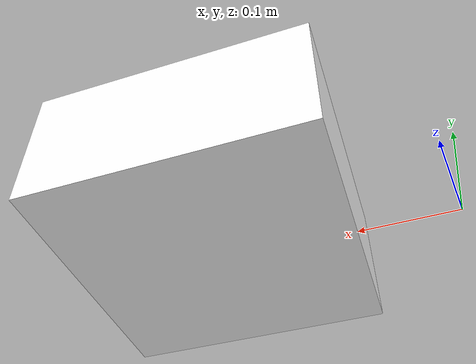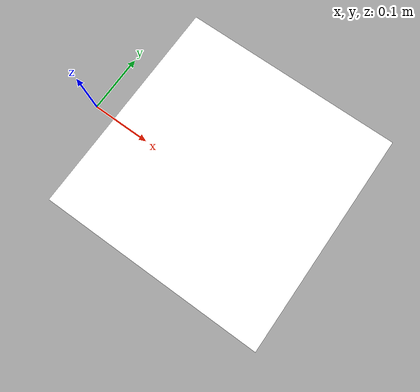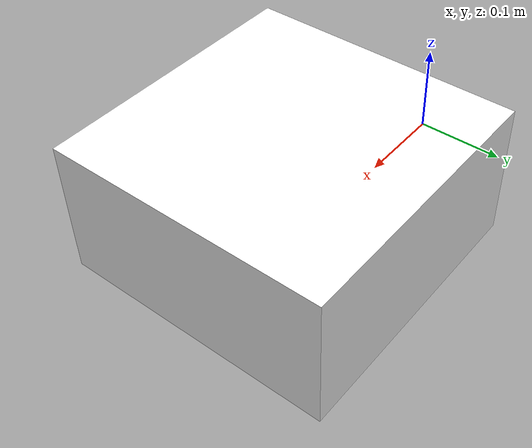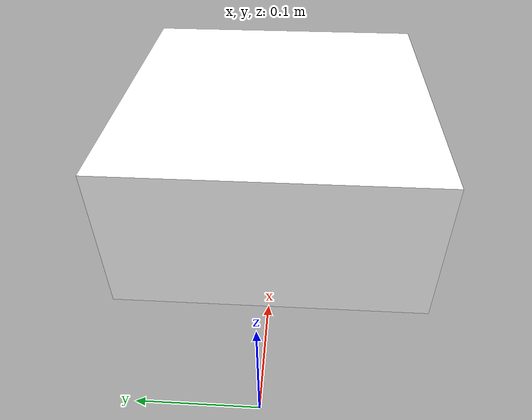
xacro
<?xml version="1.0"?>
<robot xmlns:xacro="http://www.ros.org/wiki/xacro">

    <!-- Define Materials -->
    <material name="white">
        <color rgba="1 1 1 1" />
    </material>

    <material name="orange">
        <color rgba="1 0.3 0.1 1" />
    </material>

    <material name="blue">
        <color rgba="0.2 0.2 1 1" />
    </material>

    <material name="black">
        <color rgba="0 0 0 1" />
    </material>

    <!-- Base Link -->
    <link name="base_link">
    </link>

    <!-- Fixed Joint -->
    <joint name="chassis_joint" type="fixed">
        <parent link="base_link" />
        <child link="chassis" />
        <origin xyz="0.1 0 0"/>
    </joint>

    <!-- Chassis Link -->
    <link name="chassis">
        <visual>
            <origin xyz="0.15 0 0.075"/>
            <geometry>
                <box size="0.3 0.3 0.15"/>
            </geometry>
            <material name="white"/>
        </visual>
    </link>

</robot>
